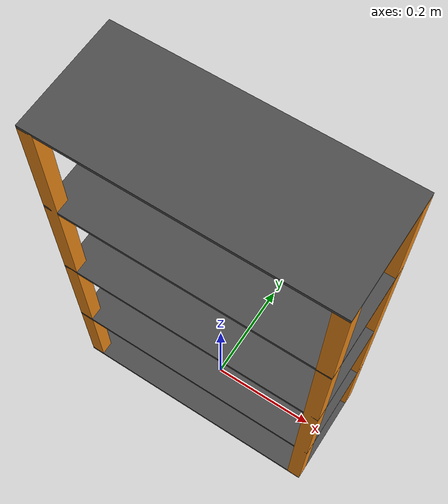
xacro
<?xml version="1.0"?>
<robot xmlns:sensor="http://playerstage.sourceforge.net/gazebo/xmlschema/#sensor"
       xmlns:controller="http://playerstage.sourceforge.net/gazebo/xmlschema/#controller"
       xmlns:interface="http://playerstage.sourceforge.net/gazebo/xmlschema/#interface"
       xmlns:xacro="http://ros.org/wiki/xacro"
	name="first">

<xacro:include filename="$(find robomuse)/urdf/robomuse_rack/rack.gazebo.xacro"/>

  <property name="rack_base_size_x" value=".484"/>
  <property name="rack_base_size_y" value="0.200"/>
  <property name="rack_base_size_z" value="0.006"/>
  <property name="rack_base_mass" value="2.0"/>

  <property name="base_size_x" value=".984"/>
  <property name="base_size_y" value="0.400"/>
  <property name="base_size_z" value="0.006"/>
  <property name="base_mass" value="2.0"/>

  <property name="vertical_offset_x" value="0.242"/>
  <property name="vertical_offset_y" value="0.1"/>
  <property name="vertical_offset_z" value="0.003"/>
  <property name="rack_vertical_mass" value="0.1"/>

  <property name="rack_vertical_size_x" value="0.0254"/>
  <property name="rack_vertical_size_y" value="0.0254"/>
  <property name="rack_vertical_size_z" value="0.780"/>

    <link name="rack_base_link">
      <inertial>
        <mass value="2"/>
        <origin xyz="0 0 0"/>
        <inertia ixx="0.012411765597" ixy="-0.000711733678" ixz="0.00050272983" iyy="0.015218160428" iyz="-0.000004273467" izz="0.011763977943"/>
      </inertial>
      <visual>
        <origin xyz="0 0 0" rpy="0 0 0"/>
                <geometry>
          <box size="${rack_base_size_x} ${rack_base_size_y} ${rack_base_size_z}"/>
        </geometry>
        <material name="DarkGrey"/>
      </visual>
      <collision>
        <origin xyz="0 0 0" rpy="0 0 0"/>
        <geometry>
          <box size="${rack_base_size_x} ${rack_base_size_y} ${rack_base_size_z}"/>
        </geometry>
      </collision>
    </link>

      <joint name="rack_joint_base" type="fixed">
      <origin xyz="${vertical_offset_x} ${vertical_offset_y} 0" rpy="0 0 0"/>
      <child link="rack_vertical_link1"/>
      <parent link="rack_base_link"/>
    </joint>

    <link name="rack_vertical_link1">
      <inertial>
        <mass value="2"/>
        <origin xyz="${rack_vertical_size_x/2} ${rack_vertical_size_y/2} ${rack_vertical_size_z/2}"/>
        <inertia ixx="0.012411765597" ixy="-0.000711733678" ixz="0.00050272983" iyy="0.015218160428" iyz="-0.000004273467" izz="0.011763977943"/>
      </inertial>
      <visual>
        <origin xyz="${-rack_vertical_size_x/2} ${-rack_vertical_size_y/2} ${rack_vertical_size_z/2}" rpy="0 0 0"/>
                <geometry>
          <box size="${rack_vertical_size_x} ${rack_vertical_size_y} ${rack_vertical_size_z}"/>
        </geometry>
        <material name="Orange"/>
      </visual>
      <collision>
        <origin xyz="${rack_vertical_size_x/2} ${rack_vertical_size_y/2} ${rack_vertical_size_z/2}" rpy="0 0 0"/>
        <geometry>
          <box size="${rack_vertical_size_x} ${rack_vertical_size_y} ${rack_vertical_size_z}"/>
        </geometry>
      </collision>
    </link>

<joint name="rack_joint_base1" type="fixed">
      <origin xyz="${vertical_offset_x} ${-vertical_offset_y} 0" rpy="0 0 0"/>
      <child link="rack_vertical_link2"/>
      <parent link="rack_base_link"/>
    </joint>

<link name="rack_vertical_link2">
      <inertial>
        <mass value="2"/>
        <origin xyz="${rack_vertical_size_x/2} ${rack_vertical_size_y/2} ${rack_vertical_size_z/2}"/>
        <inertia ixx="0.012411765597" ixy="-0.000711733678" ixz="0.00050272983" iyy="0.015218160428" iyz="-0.000004273467" izz="0.011763977943"/>
      </inertial>
      <visual>
        <origin xyz="${-rack_vertical_size_x/2} ${rack_vertical_size_y/2} ${rack_vertical_size_z/2}" rpy="0 0 0"/>
                <geometry>
          <box size="${rack_vertical_size_x} ${rack_vertical_size_y} ${rack_vertical_size_z}"/>
        </geometry>
        <material name="Orange"/>
      </visual>
      <collision>
        <origin xyz="${rack_vertical_size_x/2} ${rack_vertical_size_y/2} ${rack_vertical_size_z/2}" rpy="0 0 0"/>
        <geometry>
          <box size="${rack_vertical_size_x} ${rack_vertical_size_y} ${rack_vertical_size_z}"/>
        </geometry>
      </collision>
    </link>
<joint name="rack_joint_base2" type="fixed">
      <origin xyz="${-vertical_offset_x} ${-vertical_offset_y} 0" rpy="0 0 0"/>
      <child link="rack_vertical_link3"/>
      <parent link="rack_base_link"/>
    </joint>
<link name="rack_vertical_link3">
      <inertial>
        <mass value="2"/>
        <origin xyz="${rack_vertical_size_x/2} ${rack_vertical_size_y/2} ${rack_vertical_size_z/2}"/>
        <inertia ixx="0.012411765597" ixy="-0.000711733678" ixz="0.00050272983" iyy="0.015218160428" iyz="-0.000004273467" izz="0.011763977943"/>
      </inertial>
      <visual>
        <origin xyz="${rack_vertical_size_x/2} ${rack_vertical_size_y/2} ${rack_vertical_size_z/2}" rpy="0 0 0"/>
                <geometry>
          <box size="${rack_vertical_size_x} ${rack_vertical_size_y} ${rack_vertical_size_z}"/>
        </geometry>
        <material name="Orange"/>
      </visual>
      <collision>
        <origin xyz="${rack_vertical_size_x/2} ${rack_vertical_size_y/2} ${rack_vertical_size_z/2}" rpy="0 0 0"/>
        <geometry>
          <box size="${rack_vertical_size_x} ${rack_vertical_size_y} ${rack_vertical_size_z}"/>
        </geometry>
      </collision>
    </link>
<joint name="rack_joint_base3" type="fixed">
      <origin xyz="${-vertical_offset_x} ${vertical_offset_y} 0" rpy="0 0 0"/>
      <child link="rack_vertical_link4"/>
      <parent link="rack_base_link"/>
    </joint>
<link name="rack_vertical_link4">
      <inertial>
        <mass value="2"/>
        <origin xyz="${rack_vertical_size_x/2} ${rack_vertical_size_y/2} ${rack_vertical_size_z/2}"/>
        <inertia ixx="0.012411765597" ixy="-0.000711733678" ixz="0.00050272983" iyy="0.015218160428" iyz="-0.000004273467" izz="0.011763977943"/>
      </inertial>
      <visual>
        <origin xyz="${rack_vertical_size_x/2} ${-rack_vertical_size_y/2} ${rack_vertical_size_z/2}" rpy="0 0 0"/>
                <geometry>
          <box size="${rack_vertical_size_x} ${rack_vertical_size_y} ${rack_vertical_size_z}"/>
        </geometry>
        <material name="Orange"/>
      </visual>
      <collision>
        <origin xyz="${rack_vertical_size_x/2} ${rack_vertical_size_y/2} ${rack_vertical_size_z/2}" rpy="0 0 0"/>
        <geometry>
          <box size="${rack_vertical_size_x} ${rack_vertical_size_y} ${rack_vertical_size_z}"/>
        </geometry>
      </collision>
    </link>

<joint name="rack_joint_link11" type="fixed">
      <origin xyz="${vertical_offset_x} ${vertical_offset_y} 0.090" rpy="0 0 0"/>
      <child link="rack_link2"/>
      <parent link="rack_vertical_link1"/>
    </joint>
<link name="rack_link2">
      <inertial>
        <mass value="2"/>
        <origin xyz="0 0 0.09"/>
        <inertia ixx="0.012411765597" ixy="-0.000711733678" ixz="0.00050272983" iyy="0.015218160428" iyz="-0.000004273467" izz="0.011763977943"/>
      </inertial>
      <visual>
        <origin xyz="${-rack_base_size_x} ${-rack_base_size_y} 0.09" rpy="0 0 0"/>
                <geometry>
          <box size="${rack_base_size_x} ${rack_base_size_y} ${rack_base_size_z}"/>
        </geometry>
        <material name="DarkGrey"/>
      </visual>
      <collision>
        <origin xyz="0 0 0.09" rpy="0 0 0"/>
        <geometry>
          <box size="${rack_base_size_x} ${rack_base_size_y} ${rack_base_size_z}"/>
        </geometry>
      </collision>
</link>

<joint name="rack_joint_link21" type="fixed">
      <origin xyz="${vertical_offset_x} ${vertical_offset_y} 0.190" rpy="0 0 0"/>
      <child link="rack_link3"/>
      <parent link="rack_vertical_link1"/>
    </joint>
<link name="rack_link3">
      <inertial>
        <mass value="2"/>
        <origin xyz="0 0 0.19"/>
        <inertia ixx="0.012411765597" ixy="-0.000711733678" ixz="0.00050272983" iyy="0.015218160428" iyz="-0.000004273467" izz="0.011763977943"/>
      </inertial>
      <visual>
        <origin xyz="${-rack_base_size_x} ${-rack_base_size_y} 0.19" rpy="0 0 0"/>
                <geometry>
          <box size="${rack_base_size_x} ${rack_base_size_y} ${rack_base_size_z}"/>
        </geometry>
        <material name="DarkGrey"/>
      </visual>
      <collision>
        <origin xyz="0 0 0.19" rpy="0 0 0"/>
        <geometry>
          <box size="${rack_base_size_x} ${rack_base_size_y} ${rack_base_size_z}"/>
        </geometry>
      </collision>
</link>
<joint name="rack_joint_link31" type="fixed">
      <origin xyz="${vertical_offset_x} ${vertical_offset_y} 0.290" rpy="0 0 0"/>
      <child link="rack_link4"/>
      <parent link="rack_vertical_link1"/>
    </joint>
<link name="rack_link4">
      <inertial>
        <mass value="2"/>
        <origin xyz="0 0 0.29"/>
        <inertia ixx="0.012411765597" ixy="-0.000711733678" ixz="0.00050272983" iyy="0.015218160428" iyz="-0.000004273467" izz="0.011763977943"/>
      </inertial>
      <visual>
        <origin xyz="${-rack_base_size_x} ${-rack_base_size_y} 0.29" rpy="0 0 0"/>
                <geometry>
          <box size="${rack_base_size_x} ${rack_base_size_y} ${rack_base_size_z}"/>
        </geometry>
        <material name="DarkGrey"/>
      </visual>
      <collision>
        <origin xyz="0 0 0.29" rpy="0 0 0"/>
        <geometry>
          <box size="${rack_base_size_x} ${rack_base_size_y} ${rack_base_size_z}"/>
        </geometry>
      </collision>
</link>
<joint name="rack_joint_link41" type="fixed">
      <origin xyz="${vertical_offset_x} ${vertical_offset_y} 0.390" rpy="0 0 0"/>
      <child link="rack_link5"/>
      <parent link="rack_vertical_link1"/>
    </joint>
<link name="rack_link5">
      <inertial>
        <mass value="2"/>
        <origin xyz="0 0 0.39"/>
        <inertia ixx="0.012411765597" ixy="-0.000711733678" ixz="0.00050272983" iyy="0.015218160428" iyz="-0.000004273467" izz="0.011763977943"/>
      </inertial>
      <visual>
        <origin xyz="${-rack_base_size_x} ${-rack_base_size_y} 0.39" rpy="0 0 0"/>
                <geometry>
          <box size="${rack_base_size_x} ${rack_base_size_y} ${rack_base_size_z}"/>
        </geometry>
        <material name="DarkGrey"/>
      </visual>
      <collision>
        <origin xyz="0 0 0.39" rpy="0 0 0"/>
        <geometry>
          <box size="${rack_base_size_x} ${rack_base_size_y} ${rack_base_size_z}"/>
        </geometry>
      </collision>
</link>

<xacro:rack_gazebo/>
</robot>
